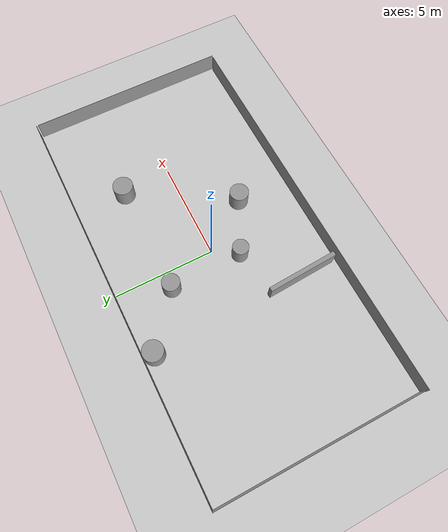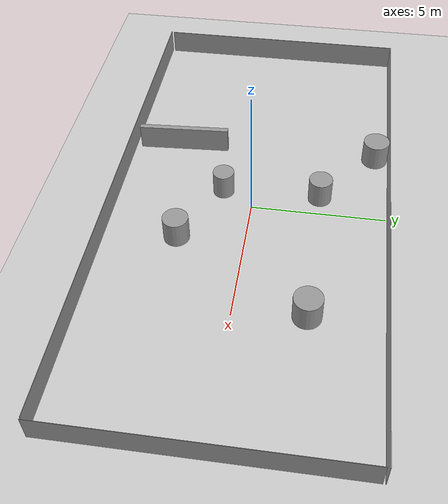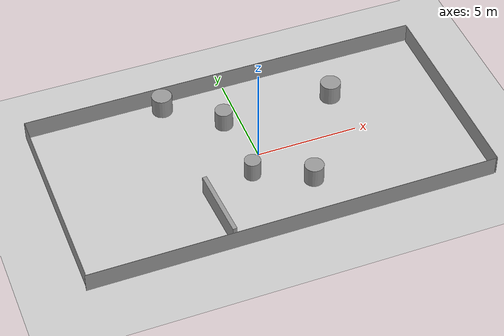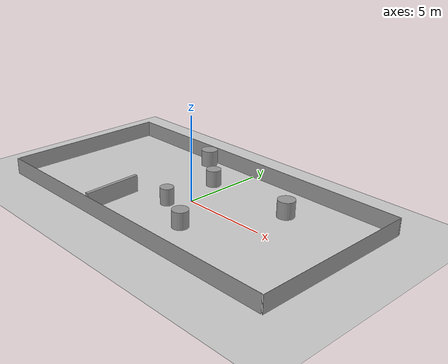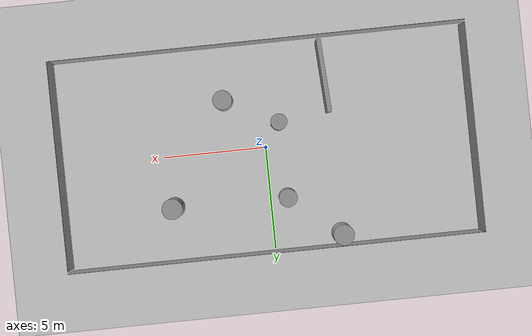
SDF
<sdf version="1.7">
 <world name="default">
  <light name="sun" type="directional">
   <pose>0 0 10 0 -0 0</pose>
   <diffuse>0.8 0.8 0.8 1</diffuse>
   <specular>0.2 0.2 0.2 1</specular>
   <attenuation>
    <range>1000</range>
    <constant>0.9</constant>
    <linear>0.01</linear>
    <quadratic>0.001</quadratic>
   </attenuation>
   <direction>-0.5 0.1 -0.9</direction>
   <spot><inner_angle>0</inner_angle><outer_angle>0</outer_angle><falloff>0</falloff></spot>
  </light>
  <model name="ground_plane">
   <static>1</static>
   <link name="link">
    <collision name="collision">
     <geometry><plane><normal>0 0 1</normal><size>100 100</size></plane></geometry>
     <surface>
      <contact><collide_bitmask>65535</collide_bitmask></contact>
      <friction><ode><mu>100</mu><mu2>50</mu2></ode></friction>
     </surface>
    </collision>
    <visual name="visual">
     <cast_shadows>0</cast_shadows>
     <geometry><plane><normal>0 0 1</normal><size>100 100</size></plane></geometry>
     <material>
      <script><uri>file://media/materials/scripts/gazebo.material</uri><name>Gazebo/Grey</name></script>
     </material>
    </visual>
   </link>
  </model>
  <gravity>0 0 -9.8</gravity>
  <magnetic_field>6e-06 2.3e-05 -4.2e-05</magnetic_field>
  <atmosphere type="adiabatic"/>
  <physics type="ode">
   <max_step_size>0.001</max_step_size>
   <real_time_factor>1</real_time_factor>
   <real_time_update_rate>1000</real_time_update_rate>
  </physics>
  <scene><ambient>0.4 0.4 0.4 1</ambient><background>0.7 0.7 0.7 1</background><shadows>1</shadows></scene>
  <spherical_coordinates>
   <surface_model>EARTH_WGS84</surface_model>
   <latitude_deg>0</latitude_deg>
   <longitude_deg>0</longitude_deg>
   <elevation>0</elevation>
   <heading_deg>0</heading_deg>
  </spherical_coordinates>
  <model name="unit_box">
   <pose>9.97582 -0.063824 0.499996 1e-06 -2e-06 -1.57021</pose>
   <link name="link">
    <inertial>
     <mass>1</mass>
     <inertia>
      <ixx>0.166667</ixx>
      <ixy>0</ixy>
      <ixz>0</ixz>
      <iyy>0.166667</iyy>
      <iyz>0</iyz>
      <izz>0.166667</izz>
     </inertia>
    </inertial>
    <collision name="collision"><geometry><box><size>10.0925 0.015769 1</size></box></geometry></collision>
    <visual name="visual">
     <geometry><box><size>10.0925 0.015769 1</size></box></geometry>
     <material>
      <script><name>Gazebo/Grey</name><uri>file://media/materials/scripts/gazebo.material</uri></script>
     </material>
    </visual>
   </link>
  </model>
  <model name="unit_box_clone">
   <pose>-10.0055 0.014066 0.499996 -1e-06 2e-06 -1.57017</pose>
   <link name="link">
    <inertial>
     <mass>1</mass>
     <inertia>
      <ixx>0.166667</ixx>
      <ixy>0</ixy>
      <ixz>0</ixz>
      <iyy>0.166667</iyy>
      <iyz>0</iyz>
      <izz>0.166667</izz>
     </inertia>
    </inertial>
    <collision name="collision"><geometry><box><size>10.0925 0.015769 1</size></box></geometry></collision>
    <visual name="visual">
     <geometry><box><size>10.0925 0.015769 1</size></box></geometry>
     <material>
      <script><name>Gazebo/Grey</name><uri>file://media/materials/scripts/gazebo.material</uri></script>
     </material>
    </visual>
   </link>
  </model>
  <model name="unit_box_clone_0">
   <pose>-0.0743 -5.1188 0.499924 -2e-06 -1.5e-05 -3.1402</pose>
   <link name="link">
    <inertial>
     <mass>1</mass>
     <inertia>
      <ixx>0.166667</ixx>
      <ixy>0</ixy>
      <ixz>0</ixz>
      <iyy>0.166667</iyy>
      <iyz>0</iyz>
      <izz>0.166667</izz>
     </inertia>
    </inertial>
    <collision name="collision"><geometry><box><size>19.9716 0.015769 1</size></box></geometry></collision>
    <visual name="visual">
     <geometry><box><size>19.9716 0.015769 1</size></box></geometry>
     <material>
      <script><name>Gazebo/Grey</name><uri>file://media/materials/scripts/gazebo.material</uri></script>
     </material>
    </visual>
   </link>
  </model>
  <model name="unit_box_clone_0_clone">
   <pose>-2.5e-05 5.05451 0.499924 3e-06 -1.5e-05 -3.14015</pose>
   <link name="link">
    <inertial>
     <mass>1</mass>
     <inertia>
      <ixx>0.166667</ixx>
      <ixy>0</ixy>
      <ixz>0</ixz>
      <iyy>0.166667</iyy>
      <iyz>0</iyz>
      <izz>0.166667</izz>
     </inertia>
    </inertial>
    <collision name="collision"><geometry><box><size>19.9716 0.015769 1</size></box></geometry></collision>
    <visual name="visual">
     <geometry><box><size>19.9716 0.015769 1</size></box></geometry>
     <material>
      <script><name>Gazebo/Grey</name><uri>file://media/materials/scripts/gazebo.material</uri></script>
     </material>
    </visual>
   </link>
  </model>
  <model name="unit_box_1">
   <pose>-3.09715 -3.13623 0.499602 0.000227 -9e-06 0.055646</pose>
   <link name="link">
    <inertial>
     <mass>1</mass>
     <inertia>
      <ixx>0.166667</ixx>
      <ixy>0</ixy>
      <ixz>0</ixz>
      <iyy>0.166667</iyy>
      <iyz>0</iyz>
      <izz>0.166667</izz>
     </inertia>
    </inertial>
    <collision name="collision"><geometry><box><size>0.211578 3.52293 1</size></box></geometry></collision>
    <visual name="visual">
     <geometry><box><size>0.211578 3.52293 1</size></box></geometry>
     <material>
      <script><name>Gazebo/Grey</name><uri>file://media/materials/scripts/gazebo.material</uri></script>
     </material>
    </visual>
   </link>
  </model>
  <model name="unit_cylinder_clone_1_clone">
   <pose>-3.2907 4.5195 0.499997 4e-06 3e-06 -0</pose>
   <link name="link">
    <inertial>
     <mass>1</mass>
     <inertia><ixx>0.145833</ixx><ixy>0</ixy><ixz>0</ixz><iyy>0.145833</iyy><iyz>0</iyz><izz>0.125</izz></inertia>
    </inertial>
    <collision name="collision">
     <geometry><cylinder><radius>0.5</radius><length>1</length></cylinder></geometry>
    </collision>
    <visual name="visual">
     <geometry><cylinder><radius>0.5</radius><length>1</length></cylinder></geometry>
     <material>
      <script><name>Gazebo/Grey</name><uri>file://media/materials/scripts/gazebo.material</uri></script>
     </material>
    </visual>
   </link>
  </model>
  <model name="unit_cylinder_clone_1_clone_0">
   <pose>-0.740622 -1.15208 0.499993 -3e-06 -1e-06 -0</pose>
   <link name="link">
    <inertial>
     <mass>1</mass>
     <inertia><ixx>0.145833</ixx><ixy>0</ixy><ixz>0</ixz><iyy>0.145833</iyy><iyz>0</iyz><izz>0.125</izz></inertia>
    </inertial>
    <collision name="collision">
     <geometry><cylinder><radius>0.39675</radius><length>1</length></cylinder></geometry>
    </collision>
    <visual name="visual">
     <geometry><cylinder><radius>0.39675</radius><length>1</length></cylinder></geometry>
     <material>
      <script><name>Gazebo/Grey</name><uri>file://media/materials/scripts/gazebo.material</uri></script>
     </material>
    </visual>
   </link>
  </model>
  <model name="unit_cylinder_clone_1_clone_0_clone">
   <pose>1.84002 -2.45116 0.499993 -0 -0 -0</pose>
   <link name="link">
    <inertial>
     <mass>1</mass>
     <inertia><ixx>0.145833</ixx><ixy>0</ixy><ixz>0</ixz><iyy>0.145833</iyy><iyz>0</iyz><izz>0.125</izz></inertia>
    </inertial>
    <collision name="collision">
     <geometry><cylinder><radius>0.467807</radius><length>1</length></cylinder></geometry>
    </collision>
    <visual name="visual">
     <geometry><cylinder><radius>0.467807</radius><length>1</length></cylinder></geometry>
     <material>
      <script><name>Gazebo/Grey</name><uri>file://media/materials/scripts/gazebo.material</uri></script>
     </material>
    </visual>
   </link>
  </model>
  <model name="unit_cylinder_clone_1_clone_clone">
   <pose>-0.825897 2.50298 0.499998 2e-06 3e-06 0</pose>
   <link name="link">
    <inertial>
     <mass>1</mass>
     <inertia><ixx>0.145833</ixx><ixy>0</ixy><ixz>0</ixz><iyy>0.145833</iyy><iyz>0</iyz><izz>0.125</izz></inertia>
    </inertial>
    <collision name="collision">
     <geometry><cylinder><radius>0.437908</radius><length>1</length></cylinder></geometry>
    </collision>
    <visual name="visual">
     <geometry><cylinder><radius>0.437908</radius><length>1</length></cylinder></geometry>
     <material>
      <script><name>Gazebo/Grey</name><uri>file://media/materials/scripts/gazebo.material</uri></script>
     </material>
    </visual>
   </link>
  </model>
  <model name="unit_cylinder_clone_1_clone_clone_clone">
   <pose>4.72982 2.48425 0.499992 -3e-06 3e-06 0</pose>
   <link name="link">
    <inertial>
     <mass>1</mass>
     <inertia><ixx>0.145833</ixx><ixy>0</ixy><ixz>0</ixz><iyy>0.145833</iyy><iyz>0</iyz><izz>0.125</izz></inertia>
    </inertial>
    <collision name="collision">
     <geometry><cylinder><radius>0.5</radius><length>1</length></cylinder></geometry>
    </collision>
    <visual name="visual">
     <geometry><cylinder><radius>0.5</radius><length>1</length></cylinder></geometry>
     <material>
      <script><name>Gazebo/Grey</name><uri>file://media/materials/scripts/gazebo.material</uri></script>
     </material>
    </visual>
   </link>
  </model>
 </world>
</sdf>
